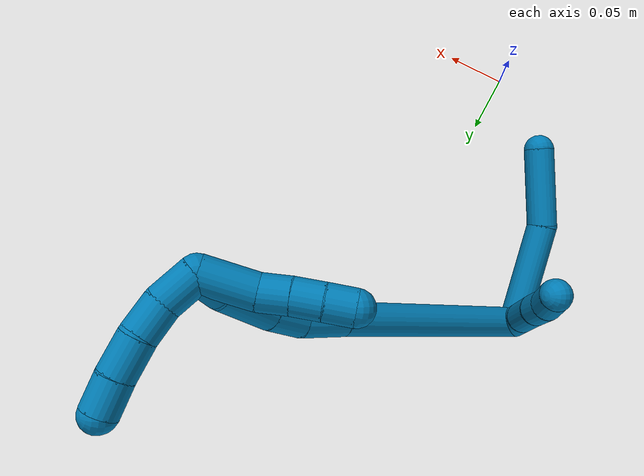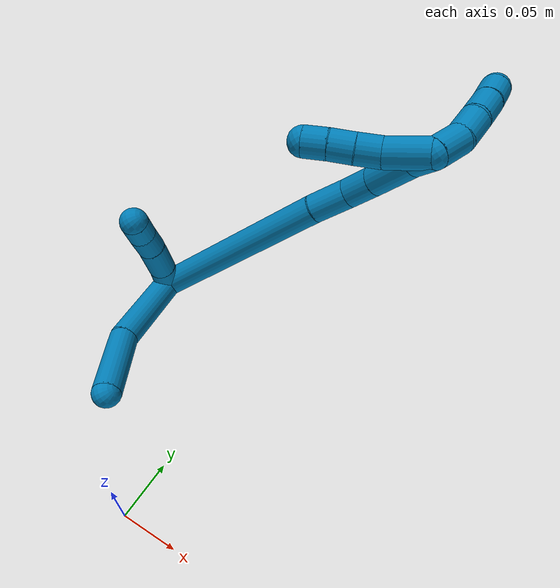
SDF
<sdf version="1.7">
 <world name="default">
  <model name="9">
   <static>0</static>
   <link name="9">
    <collision name="collision-cylinder-e_1_2_8">
     <pose>-0.023339 0.034988 -0.00666 -1.75889 -0.580086 0.692222</pose>
     <geometry><cylinder><radius>0.0125</radius><length>0.085165</length></cylinder></geometry>
     <surface>
      <friction><ode><mu>1.16</mu><mu2>1.16</mu2><slip1>0</slip1><slip2>0</slip2></ode></friction>
      <contact><ode><kp>1e+06</kp><kd>1</kd><max_vel>0</max_vel><min_depth>0.001</min_depth></ode></contact>
     </surface>
    </collision>
    <visual name="visual-cylinder-e_1_2_8">
     <pose>-0.023339 0.034988 -0.00666 -1.75889 -0.580086 0.692222</pose>
     <geometry><cylinder><radius>0.0125</radius><length>0.085165</length></cylinder></geometry>
     <material><ambient>0 0.490196 0.709804 1</ambient></material>
    </visual>
    <collision name="collision-cylinder-e_2_8_6">
     <pose>-0.070269 0.09211 -0.01119 -1.47489 -0.814973 0.747376</pose>
     <geometry><cylinder><radius>0.0125</radius><length>0.064835</length></cylinder></geometry>
     <surface>
      <friction><ode><mu>1.16</mu><mu2>1.16</mu2><slip1>0</slip1><slip2>0</slip2></ode></friction>
      <contact><ode><kp>1e+06</kp><kd>1</kd><max_vel>0</max_vel><min_depth>0.001</min_depth></ode></contact>
     </surface>
    </collision>
    <visual name="visual-cylinder-e_2_8_6">
     <pose>-0.070269 0.09211 -0.01119 -1.47489 -0.814973 0.747376</pose>
     <geometry><cylinder><radius>0.0125</radius><length>0.064835</length></cylinder></geometry>
     <material><ambient>0 0.490196 0.709804 1</ambient></material>
    </visual>
    <collision name="collision-cylinder-e_1_2_9">
     <pose>0.004757 0.009764 0.007668 -0.905066 0.36589 -0.179418</pose>
     <geometry><cylinder><radius>0.0125</radius><length>0.02659</length></cylinder></geometry>
     <surface>
      <friction><ode><mu>1.16</mu><mu2>1.16</mu2><slip1>0</slip1><slip2>0</slip2></ode></friction>
      <contact><ode><kp>1e+06</kp><kd>1</kd><max_vel>0</max_vel><min_depth>0.001</min_depth></ode></contact>
     </surface>
    </collision>
    <visual name="visual-cylinder-e_1_2_9">
     <pose>0.004757 0.009764 0.007668 -0.905066 0.36589 -0.179418</pose>
     <geometry><cylinder><radius>0.0125</radius><length>0.02659</length></cylinder></geometry>
     <material><ambient>0 0.490196 0.709804 1</ambient></material>
    </visual>
    <collision name="collision-cylinder-e_2_9_10">
     <pose>0.015383 0.032104 0.023739 -0.981759 0.370211 -0.199512</pose>
     <geometry><cylinder><radius>0.0125</radius><length>0.032449</length></cylinder></geometry>
     <surface>
      <friction><ode><mu>1.16</mu><mu2>1.16</mu2><slip1>0</slip1><slip2>0</slip2></ode></friction>
      <contact><ode><kp>1e+06</kp><kd>1</kd><max_vel>0</max_vel><min_depth>0.001</min_depth></ode></contact>
     </surface>
    </collision>
    <visual name="visual-cylinder-e_2_9_10">
     <pose>0.015383 0.032104 0.023739 -0.981759 0.370211 -0.199512</pose>
     <geometry><cylinder><radius>0.0125</radius><length>0.032449</length></cylinder></geometry>
     <material><ambient>0 0.490196 0.709804 1</ambient></material>
    </visual>
    <collision name="collision-cylinder-e_3_10_11">
     <pose>0.025182 0.052916 0.036552 -1.07919 0.398011 -0.240394</pose>
     <geometry><cylinder><radius>0.0125</radius><length>0.02027</length></cylinder></geometry>
     <surface>
      <friction><ode><mu>1.16</mu><mu2>1.16</mu2><slip1>0</slip1><slip2>0</slip2></ode></friction>
      <contact><ode><kp>1e+06</kp><kd>1</kd><max_vel>0</max_vel><min_depth>0.001</min_depth></ode></contact>
     </surface>
    </collision>
    <visual name="visual-cylinder-e_3_10_11">
     <pose>0.025182 0.052916 0.036552 -1.07919 0.398011 -0.240394</pose>
     <geometry><cylinder><radius>0.0125</radius><length>0.02027</length></cylinder></geometry>
     <material><ambient>0 0.490196 0.709804 1</ambient></material>
    </visual>
    <collision name="collision-cylinder-e_4_11_5">
     <pose>0.031656 0.069657 0.046275 -1.01237 0.248607 -0.138311</pose>
     <geometry><cylinder><radius>0.0125</radius><length>0.020692</length></cylinder></geometry>
     <surface>
      <friction><ode><mu>1.16</mu><mu2>1.16</mu2><slip1>0</slip1><slip2>0</slip2></ode></friction>
      <contact><ode><kp>1e+06</kp><kd>1</kd><max_vel>0</max_vel><min_depth>0.001</min_depth></ode></contact>
     </surface>
    </collision>
    <visual name="visual-cylinder-e_4_11_5">
     <pose>0.031656 0.069657 0.046275 -1.01237 0.248607 -0.138311</pose>
     <geometry><cylinder><radius>0.0125</radius><length>0.020692</length></cylinder></geometry>
     <material><ambient>0 0.490196 0.709804 1</ambient></material>
    </visual>
    <collision name="collision-cylinder-e_1_2_12">
     <pose>-0.00743 0.000234 0.087944 -0.00266 -0.084289 0.000112</pose>
     <geometry><cylinder><radius>0.0125</radius><length>0.176516</length></cylinder></geometry>
     <surface>
      <friction><ode><mu>1.16</mu><mu2>1.16</mu2><slip1>0</slip1><slip2>0</slip2></ode></friction>
      <contact><ode><kp>1e+06</kp><kd>1</kd><max_vel>0</max_vel><min_depth>0.001</min_depth></ode></contact>
     </surface>
    </collision>
    <visual name="visual-cylinder-e_1_2_12">
     <pose>-0.00743 0.000234 0.087944 -0.00266 -0.084289 0.000112</pose>
     <geometry><cylinder><radius>0.0125</radius><length>0.176516</length></cylinder></geometry>
     <material><ambient>0 0.490196 0.709804 1</ambient></material>
    </visual>
    <collision name="collision-cylinder-e_2_12_13">
     <pose>-0.016656 -0.000873 0.192468 0.080689 -0.107525 -0.004345</pose>
     <geometry><cylinder><radius>0.0125</radius><length>0.033462</length></cylinder></geometry>
     <surface>
      <friction><ode><mu>1.16</mu><mu2>1.16</mu2><slip1>0</slip1><slip2>0</slip2></ode></friction>
      <contact><ode><kp>1e+06</kp><kd>1</kd><max_vel>0</max_vel><min_depth>0.001</min_depth></ode></contact>
     </surface>
    </collision>
    <visual name="visual-cylinder-e_2_12_13">
     <pose>-0.016656 -0.000873 0.192468 0.080689 -0.107525 -0.004345</pose>
     <geometry><cylinder><radius>0.0125</radius><length>0.033462</length></cylinder></geometry>
     <material><ambient>0 0.490196 0.709804 1</ambient></material>
    </visual>
    <collision name="collision-cylinder-e_3_13_14">
     <pose>-0.0206 0.000331 0.221805 -0.196886 -0.163665 0.0162</pose>
     <geometry><cylinder><radius>0.0125</radius><length>0.026367</length></cylinder></geometry>
     <surface>
      <friction><ode><mu>1.16</mu><mu2>1.16</mu2><slip1>0</slip1><slip2>0</slip2></ode></friction>
      <contact><ode><kp>1e+06</kp><kd>1</kd><max_vel>0</max_vel><min_depth>0.001</min_depth></ode></contact>
     </surface>
    </collision>
    <visual name="visual-cylinder-e_3_13_14">
     <pose>-0.0206 0.000331 0.221805 -0.196886 -0.163665 0.0162</pose>
     <geometry><cylinder><radius>0.0125</radius><length>0.026367</length></cylinder></geometry>
     <material><ambient>0 0.490196 0.709804 1</ambient></material>
    </visual>
    <collision name="collision-cylinder-e_4_14_15">
     <pose>-0.02645 0.009828 0.253853 -0.345912 -0.178611 0.031284</pose>
     <geometry><cylinder><radius>0.0125</radius><length>0.041678</length></cylinder></geometry>
     <surface>
      <friction><ode><mu>1.16</mu><mu2>1.16</mu2><slip1>0</slip1><slip2>0</slip2></ode></friction>
      <contact><ode><kp>1e+06</kp><kd>1</kd><max_vel>0</max_vel><min_depth>0.001</min_depth></ode></contact>
     </surface>
    </collision>
    <visual name="visual-cylinder-e_4_14_15">
     <pose>-0.02645 0.009828 0.253853 -0.345912 -0.178611 0.031284</pose>
     <geometry><cylinder><radius>0.0125</radius><length>0.041678</length></cylinder></geometry>
     <material><ambient>0 0.490196 0.709804 1</ambient></material>
    </visual>
    <collision name="collision-cylinder-e_5_15_1">
     <pose>-0.033593 0.021664 0.28237 -0.486803 -0.318499 0.079724</pose>
     <geometry><cylinder><radius>0.0125</radius><length>0.021978</length></cylinder></geometry>
     <surface>
      <friction><ode><mu>1.16</mu><mu2>1.16</mu2><slip1>0</slip1><slip2>0</slip2></ode></friction>
      <contact><ode><kp>1e+06</kp><kd>1</kd><max_vel>0</max_vel><min_depth>0.001</min_depth></ode></contact>
     </surface>
    </collision>
    <visual name="visual-cylinder-e_5_15_1">
     <pose>-0.033593 0.021664 0.28237 -0.486803 -0.318499 0.079724</pose>
     <geometry><cylinder><radius>0.0125</radius><length>0.021978</length></cylinder></geometry>
     <material><ambient>0 0.490196 0.709804 1</ambient></material>
    </visual>
    <collision name="collision-cylinder-e_1_1_16">
     <pose>-0.033994 0.016657 0.30012 0.859247 0.228764 0.105174</pose>
     <geometry><cylinder><radius>0.0125</radius><length>0.026813</length></cylinder></geometry>
     <surface>
      <friction><ode><mu>1.16</mu><mu2>1.16</mu2><slip1>0</slip1><slip2>0</slip2></ode></friction>
      <contact><ode><kp>1e+06</kp><kd>1</kd><max_vel>0</max_vel><min_depth>0.001</min_depth></ode></contact>
     </surface>
    </collision>
    <visual name="visual-cylinder-e_1_1_16">
     <pose>-0.033994 0.016657 0.30012 0.859247 0.228764 0.105174</pose>
     <geometry><cylinder><radius>0.0125</radius><length>0.026813</length></cylinder></geometry>
     <material><ambient>0 0.490196 0.709804 1</ambient></material>
    </visual>
    <collision name="collision-cylinder-e_2_16_17">
     <pose>-0.025018 -0.001006 0.315367 0.857916 0.52382 0.24399</pose>
     <geometry><cylinder><radius>0.0125</radius><length>0.023733</length></cylinder></geometry>
     <surface>
      <friction><ode><mu>1.16</mu><mu2>1.16</mu2><slip1>0</slip1><slip2>0</slip2></ode></friction>
      <contact><ode><kp>1e+06</kp><kd>1</kd><max_vel>0</max_vel><min_depth>0.001</min_depth></ode></contact>
     </surface>
    </collision>
    <visual name="visual-cylinder-e_2_16_17">
     <pose>-0.025018 -0.001006 0.315367 0.857916 0.52382 0.24399</pose>
     <geometry><cylinder><radius>0.0125</radius><length>0.023733</length></cylinder></geometry>
     <material><ambient>0 0.490196 0.709804 1</ambient></material>
    </visual>
    <collision name="collision-cylinder-e_3_17_18">
     <pose>-0.012654 -0.018809 0.32733 1.08916 0.516591 0.317343</pose>
     <geometry><cylinder><radius>0.0125</radius><length>0.026034</length></cylinder></geometry>
     <surface>
      <friction><ode><mu>1.16</mu><mu2>1.16</mu2><slip1>0</slip1><slip2>0</slip2></ode></friction>
      <contact><ode><kp>1e+06</kp><kd>1</kd><max_vel>0</max_vel><min_depth>0.001</min_depth></ode></contact>
     </surface>
    </collision>
    <visual name="visual-cylinder-e_3_17_18">
     <pose>-0.012654 -0.018809 0.32733 1.08916 0.516591 0.317343</pose>
     <geometry><cylinder><radius>0.0125</radius><length>0.026034</length></cylinder></geometry>
     <material><ambient>0 0.490196 0.709804 1</ambient></material>
    </visual>
    <collision name="collision-cylinder-e_4_18_4">
     <pose>-8.1e-05 -0.038061 0.336363 1.18082 0.552256 0.375328</pose>
     <geometry><cylinder><radius>0.0125</radius><length>0.02342</length></cylinder></geometry>
     <surface>
      <friction><ode><mu>1.16</mu><mu2>1.16</mu2><slip1>0</slip1><slip2>0</slip2></ode></friction>
      <contact><ode><kp>1e+06</kp><kd>1</kd><max_vel>0</max_vel><min_depth>0.001</min_depth></ode></contact>
     </surface>
    </collision>
    <visual name="visual-cylinder-e_4_18_4">
     <pose>-8.1e-05 -0.038061 0.336363 1.18082 0.552256 0.375328</pose>
     <geometry><cylinder><radius>0.0125</radius><length>0.02342</length></cylinder></geometry>
     <material><ambient>0 0.490196 0.709804 1</ambient></material>
    </visual>
    <collision name="collision-cylinder-e_1_1_19">
     <pose>-0.027041 0.028757 0.275333 -3.0064 0.547 -2.66801</pose>
     <geometry><cylinder><radius>0.0125</radius><length>0.038429</length></cylinder></geometry>
     <surface>
      <friction><ode><mu>1.16</mu><mu2>1.16</mu2><slip1>0</slip1><slip2>0</slip2></ode></friction>
      <contact><ode><kp>1e+06</kp><kd>1</kd><max_vel>0</max_vel><min_depth>0.001</min_depth></ode></contact>
     </surface>
    </collision>
    <visual name="visual-cylinder-e_1_1_19">
     <pose>-0.027041 0.028757 0.275333 -3.0064 0.547 -2.66801</pose>
     <geometry><cylinder><radius>0.0125</radius><length>0.038429</length></cylinder></geometry>
     <material><ambient>0 0.490196 0.709804 1</ambient></material>
    </visual>
    <collision name="collision-cylinder-e_2_19_20">
     <pose>-0.011367 0.035476 0.251339 -2.61385 0.565503 -1.64341</pose>
     <geometry><cylinder><radius>0.0125</radius><length>0.0212</length></cylinder></geometry>
     <surface>
      <friction><ode><mu>1.16</mu><mu2>1.16</mu2><slip1>0</slip1><slip2>0</slip2></ode></friction>
      <contact><ode><kp>1e+06</kp><kd>1</kd><max_vel>0</max_vel><min_depth>0.001</min_depth></ode></contact>
     </surface>
    </collision>
    <visual name="visual-cylinder-e_2_19_20">
     <pose>-0.011367 0.035476 0.251339 -2.61385 0.565503 -1.64341</pose>
     <geometry><cylinder><radius>0.0125</radius><length>0.0212</length></cylinder></geometry>
     <material><ambient>0 0.490196 0.709804 1</ambient></material>
    </visual>
    <collision name="collision-cylinder-e_3_20_21">
     <pose>0.000168 0.043745 0.2362 -2.6717 0.613905 -1.84798</pose>
     <geometry><cylinder><radius>0.0125</radius><length>0.020326</length></cylinder></geometry>
     <surface>
      <friction><ode><mu>1.16</mu><mu2>1.16</mu2><slip1>0</slip1><slip2>0</slip2></ode></friction>
      <contact><ode><kp>1e+06</kp><kd>1</kd><max_vel>0</max_vel><min_depth>0.001</min_depth></ode></contact>
     </surface>
    </collision>
    <visual name="visual-cylinder-e_3_20_21">
     <pose>0.000168 0.043745 0.2362 -2.6717 0.613905 -1.84798</pose>
     <geometry><cylinder><radius>0.0125</radius><length>0.020326</length></cylinder></geometry>
     <material><ambient>0 0.490196 0.709804 1</ambient></material>
    </visual>
    <collision name="collision-cylinder-e_4_21_3">
     <pose>0.011534 0.050719 0.221064 -2.74763 0.582285 -1.96652</pose>
     <geometry><cylinder><radius>0.0125</radius><length>0.020045</length></cylinder></geometry>
     <surface>
      <friction><ode><mu>1.16</mu><mu2>1.16</mu2><slip1>0</slip1><slip2>0</slip2></ode></friction>
      <contact><ode><kp>1e+06</kp><kd>1</kd><max_vel>0</max_vel><min_depth>0.001</min_depth></ode></contact>
     </surface>
    </collision>
    <visual name="visual-cylinder-e_4_21_3">
     <pose>0.011534 0.050719 0.221064 -2.74763 0.582285 -1.96652</pose>
     <geometry><cylinder><radius>0.0125</radius><length>0.020045</length></cylinder></geometry>
     <material><ambient>0 0.490196 0.709804 1</ambient></material>
    </visual>
    <collision name="collision-sphere-3">
     <pose>0.017046 0.053933 0.213334 0 -0 0</pose>
     <geometry><sphere><radius>0.0125</radius></sphere></geometry>
     <surface>
      <friction><ode><mu>1.16</mu><mu2>1.16</mu2><slip1>0</slip1><slip2>0</slip2></ode></friction>
      <contact><ode><kp>1e+06</kp><kd>1</kd><max_vel>0</max_vel><min_depth>0.001</min_depth></ode></contact>
     </surface>
    </collision>
    <visual name="visual-sphere-3">
     <pose>0.017046 0.053933 0.213334 0 -0 0</pose>
     <geometry><sphere><radius>0.0125</radius></sphere></geometry>
     <material><ambient>0 0.490196 0.709804 1</ambient></material>
    </visual>
    <collision name="collision-sphere-21">
     <pose>0.006022 0.047506 0.228793 0 -0 0</pose>
     <geometry><sphere><radius>0.0125</radius></sphere></geometry>
     <surface>
      <friction><ode><mu>1.16</mu><mu2>1.16</mu2><slip1>0</slip1><slip2>0</slip2></ode></friction>
      <contact><ode><kp>1e+06</kp><kd>1</kd><max_vel>0</max_vel><min_depth>0.001</min_depth></ode></contact>
     </surface>
    </collision>
    <visual name="visual-sphere-21">
     <pose>0.006022 0.047506 0.228793 0 -0 0</pose>
     <geometry><sphere><radius>0.0125</radius></sphere></geometry>
     <material><ambient>0 0.490196 0.709804 1</ambient></material>
    </visual>
    <collision name="collision-sphere-20">
     <pose>-0.005687 0.039983 0.243607 0 -0 0</pose>
     <geometry><sphere><radius>0.0125</radius></sphere></geometry>
     <surface>
      <friction><ode><mu>1.16</mu><mu2>1.16</mu2><slip1>0</slip1><slip2>0</slip2></ode></friction>
      <contact><ode><kp>1e+06</kp><kd>1</kd><max_vel>0</max_vel><min_depth>0.001</min_depth></ode></contact>
     </surface>
    </collision>
    <visual name="visual-sphere-20">
     <pose>-0.005687 0.039983 0.243607 0 -0 0</pose>
     <geometry><sphere><radius>0.0125</radius></sphere></geometry>
     <material><ambient>0 0.490196 0.709804 1</ambient></material>
    </visual>
    <collision name="collision-sphere-19">
     <pose>-0.017047 0.030969 0.259072 0 -0 0</pose>
     <geometry><sphere><radius>0.0125</radius></sphere></geometry>
     <surface>
      <friction><ode><mu>1.16</mu><mu2>1.16</mu2><slip1>0</slip1><slip2>0</slip2></ode></friction>
      <contact><ode><kp>1e+06</kp><kd>1</kd><max_vel>0</max_vel><min_depth>0.001</min_depth></ode></contact>
     </surface>
    </collision>
    <visual name="visual-sphere-19">
     <pose>-0.017047 0.030969 0.259072 0 -0 0</pose>
     <geometry><sphere><radius>0.0125</radius></sphere></geometry>
     <material><ambient>0 0.490196 0.709804 1</ambient></material>
    </visual>
    <collision name="collision-sphere-11">
     <pose>0.02911 0.061153 0.040962 0 -0 0</pose>
     <geometry><sphere><radius>0.0125</radius></sphere></geometry>
     <surface>
      <friction><ode><mu>1.16</mu><mu2>1.16</mu2><slip1>0</slip1><slip2>0</slip2></ode></friction>
      <contact><ode><kp>1e+06</kp><kd>1</kd><max_vel>0</max_vel><min_depth>0.001</min_depth></ode></contact>
     </surface>
    </collision>
    <visual name="visual-sphere-11">
     <pose>0.02911 0.061153 0.040962 0 -0 0</pose>
     <geometry><sphere><radius>0.0125</radius></sphere></geometry>
     <material><ambient>0 0.490196 0.709804 1</ambient></material>
    </visual>
    <collision name="collision-sphere-10">
     <pose>0.021254 0.04468 0.032141 0 -0 0</pose>
     <geometry><sphere><radius>0.0125</radius></sphere></geometry>
     <surface>
      <friction><ode><mu>1.16</mu><mu2>1.16</mu2><slip1>0</slip1><slip2>0</slip2></ode></friction>
      <contact><ode><kp>1e+06</kp><kd>1</kd><max_vel>0</max_vel><min_depth>0.001</min_depth></ode></contact>
     </surface>
    </collision>
    <visual name="visual-sphere-10">
     <pose>0.021254 0.04468 0.032141 0 -0 0</pose>
     <geometry><sphere><radius>0.0125</radius></sphere></geometry>
     <material><ambient>0 0.490196 0.709804 1</ambient></material>
    </visual>
    <collision name="collision-sphere-6">
     <pose>-0.093859 0.114242 -0.009061 0 -0 0</pose>
     <geometry><sphere><radius>0.0125</radius></sphere></geometry>
     <surface>
      <friction><ode><mu>1.16</mu><mu2>1.16</mu2><slip1>0</slip1><slip2>0</slip2></ode></friction>
      <contact><ode><kp>1e+06</kp><kd>1</kd><max_vel>0</max_vel><min_depth>0.001</min_depth></ode></contact>
     </surface>
    </collision>
    <visual name="visual-sphere-6">
     <pose>-0.093859 0.114242 -0.009061 0 -0 0</pose>
     <geometry><sphere><radius>0.0125</radius></sphere></geometry>
     <material><ambient>0 0.490196 0.709804 1</ambient></material>
    </visual>
    <collision name="collision-sphere-9">
     <pose>0.009513 0.019528 0.015336 0 -0 0</pose>
     <geometry><sphere><radius>0.0125</radius></sphere></geometry>
     <surface>
      <friction><ode><mu>1.16</mu><mu2>1.16</mu2><slip1>0</slip1><slip2>0</slip2></ode></friction>
      <contact><ode><kp>1e+06</kp><kd>1</kd><max_vel>0</max_vel><min_depth>0.001</min_depth></ode></contact>
     </surface>
    </collision>
    <visual name="visual-sphere-9">
     <pose>0.009513 0.019528 0.015336 0 -0 0</pose>
     <geometry><sphere><radius>0.0125</radius></sphere></geometry>
     <material><ambient>0 0.490196 0.709804 1</ambient></material>
    </visual>
    <collision name="collision-sphere-2">
     <geometry><sphere><radius>0.0125</radius></sphere></geometry>
     <surface>
      <friction><ode><mu>1.16</mu><mu2>1.16</mu2><slip1>0</slip1><slip2>0</slip2></ode></friction>
      <contact><ode><kp>1e+06</kp><kd>1</kd><max_vel>0</max_vel><min_depth>0.001</min_depth></ode></contact>
     </surface>
    </collision>
    <visual name="visual-sphere-2">
     <geometry><sphere><radius>0.0125</radius></sphere></geometry>
     <material><ambient>0 0.490196 0.709804 1</ambient></material>
    </visual>
    <collision name="collision-sphere-8">
     <pose>-0.046679 0.069977 -0.01332 0 -0 0</pose>
     <geometry><sphere><radius>0.0125</radius></sphere></geometry>
     <surface>
      <friction><ode><mu>1.16</mu><mu2>1.16</mu2><slip1>0</slip1><slip2>0</slip2></ode></friction>
      <contact><ode><kp>1e+06</kp><kd>1</kd><max_vel>0</max_vel><min_depth>0.001</min_depth></ode></contact>
     </surface>
    </collision>
    <visual name="visual-sphere-8">
     <pose>-0.046679 0.069977 -0.01332 0 -0 0</pose>
     <geometry><sphere><radius>0.0125</radius></sphere></geometry>
     <material><ambient>0 0.490196 0.709804 1</ambient></material>
    </visual>
    <collision name="collision-sphere-5">
     <pose>0.034201 0.078162 0.051588 0 -0 0</pose>
     <geometry><sphere><radius>0.0125</radius></sphere></geometry>
     <surface>
      <friction><ode><mu>1.16</mu><mu2>1.16</mu2><slip1>0</slip1><slip2>0</slip2></ode></friction>
      <contact><ode><kp>1e+06</kp><kd>1</kd><max_vel>0</max_vel><min_depth>0.001</min_depth></ode></contact>
     </surface>
    </collision>
    <visual name="visual-sphere-5">
     <pose>0.034201 0.078162 0.051588 0 -0 0</pose>
     <geometry><sphere><radius>0.0125</radius></sphere></geometry>
     <material><ambient>0 0.490196 0.709804 1</ambient></material>
    </visual>
    <collision name="collision-sphere-12">
     <pose>-0.014861 0.000468 0.175888 0 -0 0</pose>
     <geometry><sphere><radius>0.0125</radius></sphere></geometry>
     <surface>
      <friction><ode><mu>1.16</mu><mu2>1.16</mu2><slip1>0</slip1><slip2>0</slip2></ode></friction>
      <contact><ode><kp>1e+06</kp><kd>1</kd><max_vel>0</max_vel><min_depth>0.001</min_depth></ode></contact>
     </surface>
    </collision>
    <visual name="visual-sphere-12">
     <pose>-0.014861 0.000468 0.175888 0 -0 0</pose>
     <geometry><sphere><radius>0.0125</radius></sphere></geometry>
     <material><ambient>0 0.490196 0.709804 1</ambient></material>
    </visual>
    <collision name="collision-sphere-13">
     <pose>-0.018452 -0.002214 0.209049 0 -0 0</pose>
     <geometry><sphere><radius>0.0125</radius></sphere></geometry>
     <surface>
      <friction><ode><mu>1.16</mu><mu2>1.16</mu2><slip1>0</slip1><slip2>0</slip2></ode></friction>
      <contact><ode><kp>1e+06</kp><kd>1</kd><max_vel>0</max_vel><min_depth>0.001</min_depth></ode></contact>
     </surface>
    </collision>
    <visual name="visual-sphere-13">
     <pose>-0.018452 -0.002214 0.209049 0 -0 0</pose>
     <geometry><sphere><radius>0.0125</radius></sphere></geometry>
     <material><ambient>0 0.490196 0.709804 1</ambient></material>
    </visual>
    <collision name="collision-sphere-14">
     <pose>-0.022748 0.002875 0.234561 0 -0 0</pose>
     <geometry><sphere><radius>0.0125</radius></sphere></geometry>
     <surface>
      <friction><ode><mu>1.16</mu><mu2>1.16</mu2><slip1>0</slip1><slip2>0</slip2></ode></friction>
      <contact><ode><kp>1e+06</kp><kd>1</kd><max_vel>0</max_vel><min_depth>0.001</min_depth></ode></contact>
     </surface>
    </collision>
    <visual name="visual-sphere-14">
     <pose>-0.022748 0.002875 0.234561 0 -0 0</pose>
     <geometry><sphere><radius>0.0125</radius></sphere></geometry>
     <material><ambient>0 0.490196 0.709804 1</ambient></material>
    </visual>
    <collision name="collision-sphere-15">
     <pose>-0.030152 0.016781 0.273146 0 -0 0</pose>
     <geometry><sphere><radius>0.0125</radius></sphere></geometry>
     <surface>
      <friction><ode><mu>1.16</mu><mu2>1.16</mu2><slip1>0</slip1><slip2>0</slip2></ode></friction>
      <contact><ode><kp>1e+06</kp><kd>1</kd><max_vel>0</max_vel><min_depth>0.001</min_depth></ode></contact>
     </surface>
    </collision>
    <visual name="visual-sphere-15">
     <pose>-0.030152 0.016781 0.273146 0 -0 0</pose>
     <geometry><sphere><radius>0.0125</radius></sphere></geometry>
     <material><ambient>0 0.490196 0.709804 1</ambient></material>
    </visual>
    <collision name="collision-sphere-1">
     <pose>-0.037035 0.026546 0.291594 0 -0 0</pose>
     <geometry><sphere><radius>0.0125</radius></sphere></geometry>
     <surface>
      <friction><ode><mu>1.16</mu><mu2>1.16</mu2><slip1>0</slip1><slip2>0</slip2></ode></friction>
      <contact><ode><kp>1e+06</kp><kd>1</kd><max_vel>0</max_vel><min_depth>0.001</min_depth></ode></contact>
     </surface>
    </collision>
    <visual name="visual-sphere-1">
     <pose>-0.037035 0.026546 0.291594 0 -0 0</pose>
     <geometry><sphere><radius>0.0125</radius></sphere></geometry>
     <material><ambient>0 0.490196 0.709804 1</ambient></material>
    </visual>
    <collision name="collision-sphere-18">
     <pose>-0.006224 -0.02884 0.332574 0 -0 0</pose>
     <geometry><sphere><radius>0.0125</radius></sphere></geometry>
     <surface>
      <friction><ode><mu>1.16</mu><mu2>1.16</mu2><slip1>0</slip1><slip2>0</slip2></ode></friction>
      <contact><ode><kp>1e+06</kp><kd>1</kd><max_vel>0</max_vel><min_depth>0.001</min_depth></ode></contact>
     </surface>
    </collision>
    <visual name="visual-sphere-18">
     <pose>-0.006224 -0.02884 0.332574 0 -0 0</pose>
     <geometry><sphere><radius>0.0125</radius></sphere></geometry>
     <material><ambient>0 0.490196 0.709804 1</ambient></material>
    </visual>
    <collision name="collision-sphere-16">
     <pose>-0.030954 0.006767 0.308647 0 -0 0</pose>
     <geometry><sphere><radius>0.0125</radius></sphere></geometry>
     <surface>
      <friction><ode><mu>1.16</mu><mu2>1.16</mu2><slip1>0</slip1><slip2>0</slip2></ode></friction>
      <contact><ode><kp>1e+06</kp><kd>1</kd><max_vel>0</max_vel><min_depth>0.001</min_depth></ode></contact>
     </surface>
    </collision>
    <visual name="visual-sphere-16">
     <pose>-0.030954 0.006767 0.308647 0 -0 0</pose>
     <geometry><sphere><radius>0.0125</radius></sphere></geometry>
     <material><ambient>0 0.490196 0.709804 1</ambient></material>
    </visual>
    <collision name="collision-sphere-17">
     <pose>-0.019083 -0.008779 0.322087 0 -0 0</pose>
     <geometry><sphere><radius>0.0125</radius></sphere></geometry>
     <surface>
      <friction><ode><mu>1.16</mu><mu2>1.16</mu2><slip1>0</slip1><slip2>0</slip2></ode></friction>
      <contact><ode><kp>1e+06</kp><kd>1</kd><max_vel>0</max_vel><min_depth>0.001</min_depth></ode></contact>
     </surface>
    </collision>
    <visual name="visual-sphere-17">
     <pose>-0.019083 -0.008779 0.322087 0 -0 0</pose>
     <geometry><sphere><radius>0.0125</radius></sphere></geometry>
     <material><ambient>0 0.490196 0.709804 1</ambient></material>
    </visual>
    <collision name="collision-sphere-4">
     <pose>0.006062 -0.047281 0.340153 0 -0 0</pose>
     <geometry><sphere><radius>0.0125</radius></sphere></geometry>
     <surface>
      <friction><ode><mu>1.16</mu><mu2>1.16</mu2><slip1>0</slip1><slip2>0</slip2></ode></friction>
      <contact><ode><kp>1e+06</kp><kd>1</kd><max_vel>0</max_vel><min_depth>0.001</min_depth></ode></contact>
     </surface>
    </collision>
    <visual name="visual-sphere-4">
     <pose>0.006062 -0.047281 0.340153 0 -0 0</pose>
     <geometry><sphere><radius>0.0125</radius></sphere></geometry>
     <material><ambient>0 0.490196 0.709804 1</ambient></material>
    </visual>
    <inertial>
     <pose>-0.01585 0.021971 0.137401 0 -0 0</pose>
     <mass>0.75</mass>
     <inertia>
      <ixx>0.000575</ixx>
      <ixy>0</ixy>
      <ixz>0</ixz>
      <iyy>0.000575</iyy>
      <iyz>0</iyz>
      <izz>3.1e-05</izz>
     </inertia>
    </inertial>
   </link>
   <pose>-0.107629 0.197615 0.023076 0.79044 -0.423563 2.55894</pose>
  </model>
 </world>
</sdf>
